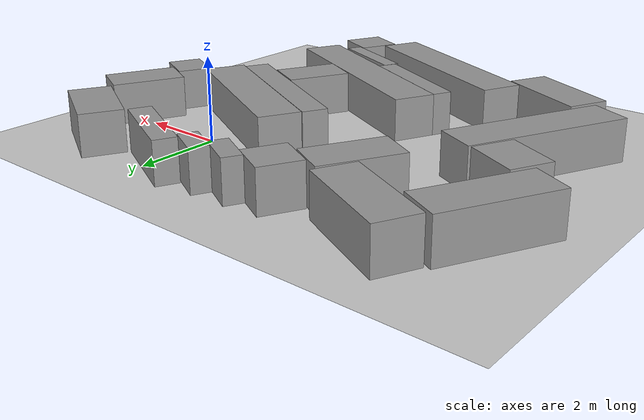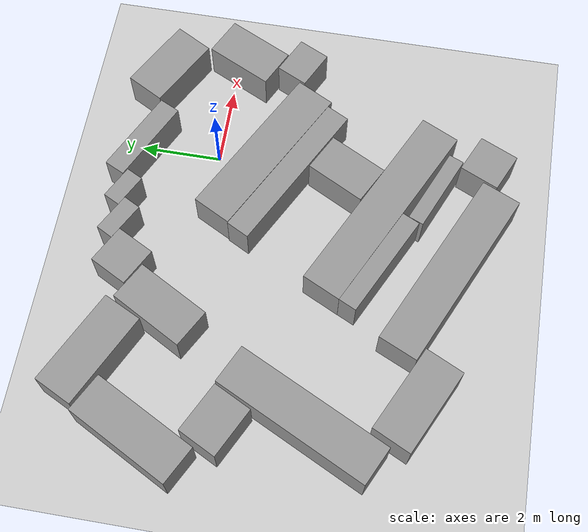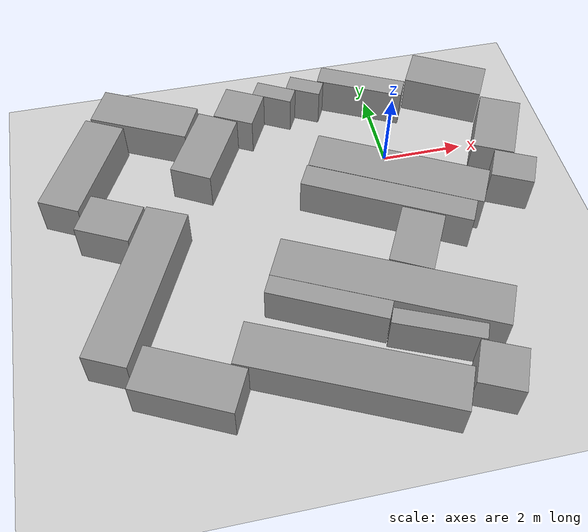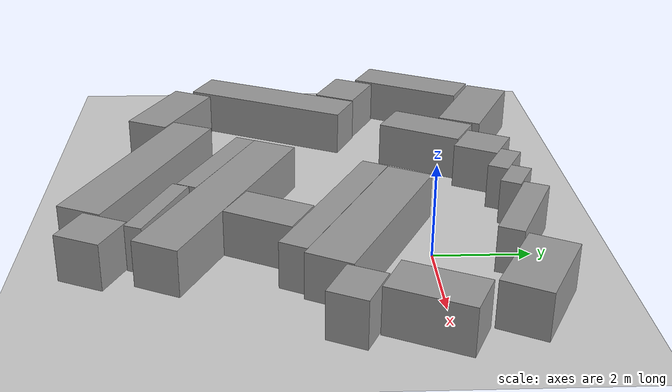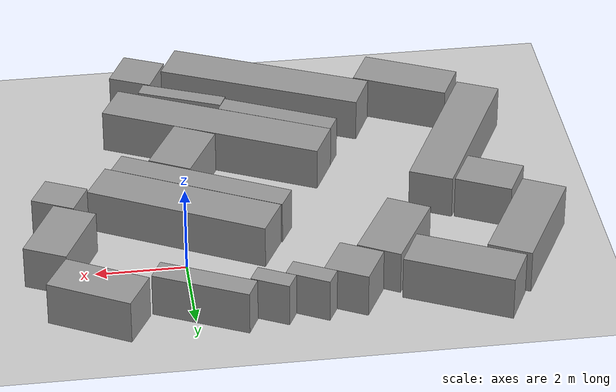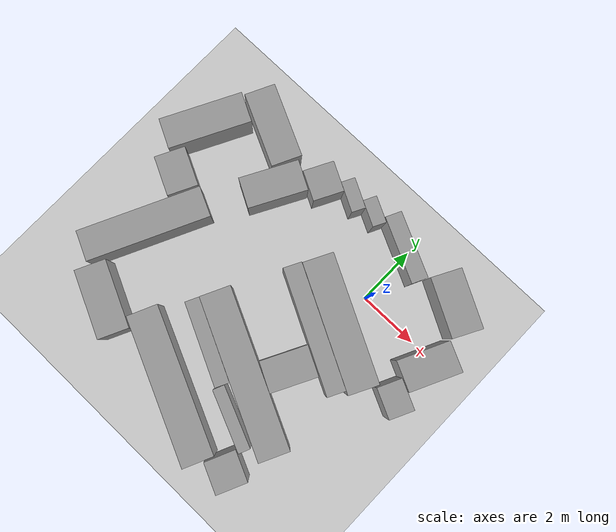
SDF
<sdf version="1.6">
 <world name="default">
  <model name="ground_plane">
   <static>1</static>
   <link name="link">
    <collision name="collision">
     <geometry><plane><normal>0 0 1</normal><size>100 100</size></plane></geometry>
     <surface>
      <contact><collide_bitmask>65535</collide_bitmask></contact>
      <friction><ode><mu>100</mu><mu2>50</mu2></ode></friction>
     </surface>
    </collision>
    <visual name="visual">
     <cast_shadows>0</cast_shadows>
     <geometry><plane><normal>0 0 1</normal><size>100 100</size></plane></geometry>
     <material>
      <script><uri>file://media/materials/scripts/gazebo.material</uri><name>Gazebo/Grey</name></script>
     </material>
    </visual>
   </link>
  </model>
  <light name="sun" type="directional">
   <pose>0 0 10 0 -0 0</pose>
   <diffuse>0.8 0.8 0.8 1</diffuse>
   <specular>0.2 0.2 0.2 1</specular>
   <attenuation>
    <range>1000</range>
    <constant>0.9</constant>
    <linear>0.01</linear>
    <quadratic>0.001</quadratic>
   </attenuation>
   <direction>-0.5 0.1 -0.9</direction>
  </light>
  <gravity>0 0 -9.8</gravity>
  <magnetic_field>6e-06 2.3e-05 -4.2e-05</magnetic_field>
  <atmosphere type="adiabatic"/>
  <physics name="default_physics" default="0" type="ode">
   <max_step_size>0.001</max_step_size>
   <real_time_factor>1</real_time_factor>
   <real_time_update_rate>1000</real_time_update_rate>
  </physics>
  <scene><ambient>0.4 0.4 0.4 1</ambient><background>0.7 0.7 0.7 1</background><shadows>1</shadows></scene>
  <audio><device>default</device></audio>
  <spherical_coordinates>
   <surface_model>EARTH_WGS84</surface_model>
   <latitude_deg>0</latitude_deg>
   <longitude_deg>0</longitude_deg>
   <elevation>0</elevation>
   <heading_deg>0</heading_deg>
  </spherical_coordinates>
  <model name="unit_box">
   <pose>-0.08106 -1.20673 0.499992 -2e-06 4e-06 -0.481204</pose>
   <link name="link">
    <inertial>
     <mass>1</mass>
     <inertia>
      <ixx>0.166667</ixx>
      <ixy>0</ixy>
      <ixz>0</ixz>
      <iyy>0.166667</iyy>
      <iyz>0</iyz>
      <izz>0.166667</izz>
     </inertia>
    </inertial>
    <collision name="collision"><geometry><box><size>4.18394 1 1</size></box></geometry></collision>
    <visual name="visual">
     <geometry><box><size>4.18394 1 1</size></box></geometry>
     <material>
      <script><name>Gazebo/Grey</name><uri>file://media/materials/scripts/gazebo.material</uri></script>
     </material>
    </visual>
   </link>
  </model>
  <light name="user_point_light_0" type="point">
   <pose>-0.109978 0.021372 1 0 -0 0</pose>
   <diffuse>0.5 0.5 0.5 1</diffuse>
   <specular>0.1 0.1 0.1 1</specular>
   <attenuation>
    <range>20</range>
    <constant>0.5</constant>
    <linear>0.01</linear>
    <quadratic>0.001</quadratic>
   </attenuation>
   <cast_shadows>0</cast_shadows>
   <direction>0 0 -1</direction>
  </light>
  <model name="unit_box_0">
   <pose>2.61788 -1.71367 0.500001 -2e-06 -0 -0.45105</pose>
   <link name="link">
    <inertial>
     <mass>1</mass>
     <inertia>
      <ixx>0.166667</ixx>
      <ixy>0</ixy>
      <ixz>0</ixz>
      <iyy>0.166667</iyy>
      <iyz>0</iyz>
      <izz>0.166667</izz>
     </inertia>
    </inertial>
    <collision name="collision"><geometry><box><size>1 0.813765 1</size></box></geometry></collision>
    <visual name="visual">
     <geometry><box><size>1 0.813765 1</size></box></geometry>
     <material>
      <script><name>Gazebo/Grey</name><uri>file://media/materials/scripts/gazebo.material</uri></script>
     </material>
    </visual>
   </link>
  </model>
  <model name="unit_box_1">
   <pose>2.70088 -0.314626 0.499995 0 -1e-05 -0.451475</pose>
   <link name="link">
    <inertial>
     <mass>1</mass>
     <inertia>
      <ixx>0.166667</ixx>
      <ixy>0</ixy>
      <ixz>0</ixz>
      <iyy>0.166667</iyy>
      <iyz>0</iyz>
      <izz>0.166667</izz>
     </inertia>
    </inertial>
    <collision name="collision"><geometry><box><size>1 1.72222 1</size></box></geometry></collision>
    <visual name="visual">
     <geometry><box><size>1 1.72222 1</size></box></geometry>
     <material>
      <script><name>Gazebo/Grey</name><uri>file://media/materials/scripts/gazebo.material</uri></script>
     </material>
    </visual>
   </link>
  </model>
  <model name="unit_box_2">
   <pose>2.02484 1.64608 0.5 0 0 -0.496639</pose>
   <link name="link">
    <inertial>
     <mass>1</mass>
     <inertia>
      <ixx>0.166667</ixx>
      <ixy>0</ixy>
      <ixz>0</ixz>
      <iyy>0.166667</iyy>
      <iyz>0</iyz>
      <izz>0.166667</izz>
     </inertia>
    </inertial>
    <collision name="collision"><geometry><box><size>1.93161 1 1</size></box></geometry></collision>
    <visual name="visual">
     <geometry><box><size>1.93161 1 1</size></box></geometry>
     <material>
      <script><name>Gazebo/Grey</name><uri>file://media/materials/scripts/gazebo.material</uri></script>
     </material>
    </visual>
   </link>
  </model>
  <model name="unit_box_3">
   <pose>-0.208437 1.84811 0.5 -0 -0 -0.449603</pose>
   <link name="link">
    <inertial>
     <mass>1</mass>
     <inertia>
      <ixx>0.166667</ixx>
      <ixy>0</ixy>
      <ixz>0</ixz>
      <iyy>0.166667</iyy>
      <iyz>0</iyz>
      <izz>0.166667</izz>
     </inertia>
    </inertial>
    <collision name="collision"><geometry><box><size>2.1854 0.532691 1</size></box></geometry></collision>
    <visual name="visual">
     <geometry><box><size>2.1854 0.532691 1</size></box></geometry>
     <material>
      <script><name>Gazebo/Grey</name><uri>file://media/materials/scripts/gazebo.material</uri></script>
     </material>
    </visual>
   </link>
  </model>
  <model name="unit_box_4">
   <pose>-1.65856 1.99206 0.5 -0 -0 -0.471515</pose>
   <link name="link">
    <inertial>
     <mass>1</mass>
     <inertia>
      <ixx>0.166667</ixx>
      <ixy>0</ixy>
      <ixz>0</ixz>
      <iyy>0.166667</iyy>
      <iyz>0</iyz>
      <izz>0.166667</izz>
     </inertia>
    </inertial>
    <collision name="collision"><geometry><box><size>0.872593 0.441047 1</size></box></geometry></collision>
    <visual name="visual">
     <geometry><box><size>0.872593 0.441047 1</size></box></geometry>
     <material>
      <script><name>Gazebo/Grey</name><uri>file://media/materials/scripts/gazebo.material</uri></script>
     </material>
    </visual>
   </link>
  </model>
  <model name="unit_box_5">
   <pose>-2.47867 1.91462 0.5 -0 -0 -0.486707</pose>
   <link name="link">
    <inertial>
     <mass>1</mass>
     <inertia>
      <ixx>0.166667</ixx>
      <ixy>0</ixy>
      <ixz>0</ixz>
      <iyy>0.166667</iyy>
      <iyz>0</iyz>
      <izz>0.166667</izz>
     </inertia>
    </inertial>
    <collision name="collision"><geometry><box><size>1 0.449802 1</size></box></geometry></collision>
    <visual name="visual">
     <geometry><box><size>1 0.449802 1</size></box></geometry>
     <material>
      <script><name>Gazebo/Grey</name><uri>file://media/materials/scripts/gazebo.material</uri></script>
     </material>
    </visual>
   </link>
  </model>
  <model name="unit_box_6">
   <pose>-3.43939 1.60097 0.5 0 0 -0.483369</pose>
   <link name="link">
    <inertial>
     <mass>1</mass>
     <inertia>
      <ixx>0.166667</ixx>
      <ixy>0</ixy>
      <ixz>0</ixz>
      <iyy>0.166667</iyy>
      <iyz>0</iyz>
      <izz>0.166667</izz>
     </inertia>
    </inertial>
    <collision name="collision"><geometry><box><size>1 1 1</size></box></geometry></collision>
    <visual name="visual">
     <geometry><box><size>1 1 1</size></box></geometry>
     <material>
      <script><name>Gazebo/Grey</name><uri>file://media/materials/scripts/gazebo.material</uri></script>
     </material>
    </visual>
   </link>
  </model>
  <model name="unit_box_7">
   <pose>-0.529742 -1.88184 0.499991 -1e-06 4e-06 -0.479867</pose>
   <link name="link">
    <inertial>
     <mass>1</mass>
     <inertia>
      <ixx>0.166667</ixx>
      <ixy>0</ixy>
      <ixz>0</ixz>
      <iyy>0.166667</iyy>
      <iyz>0</iyz>
      <izz>0.166667</izz>
     </inertia>
    </inertial>
    <collision name="collision"><geometry><box><size>4.06101 0.602779 1</size></box></geometry></collision>
    <visual name="visual">
     <geometry><box><size>4.06101 0.602779 1</size></box></geometry>
     <material>
      <script><name>Gazebo/Grey</name><uri>file://media/materials/scripts/gazebo.material</uri></script>
     </material>
    </visual>
   </link>
  </model>
  <model name="unit_box_8">
   <pose>-0.251177 -3.26548 0.499998 -0 4e-06 -0.479902</pose>
   <link name="link">
    <inertial>
     <mass>1</mass>
     <inertia>
      <ixx>0.166667</ixx>
      <ixy>0</ixy>
      <ixz>0</ixz>
      <iyy>0.166667</iyy>
      <iyz>0</iyz>
      <izz>0.166667</izz>
     </inertia>
    </inertial>
    <collision name="collision"><geometry><box><size>1 1.53321 1</size></box></geometry></collision>
    <visual name="visual">
     <geometry><box><size>1 1.53321 1</size></box></geometry>
     <material>
      <script><name>Gazebo/Grey</name><uri>file://media/materials/scripts/gazebo.material</uri></script>
     </material>
    </visual>
   </link>
  </model>
  <model name="unit_box_9">
   <pose>-1.12916 -4.26326 0.5 -1e-06 -0 -0.45107</pose>
   <link name="link">
    <inertial>
     <mass>1</mass>
     <inertia>
      <ixx>0.166667</ixx>
      <ixy>0</ixy>
      <ixz>0</ixz>
      <iyy>0.166667</iyy>
      <iyz>0</iyz>
      <izz>0.166667</izz>
     </inertia>
    </inertial>
    <collision name="collision"><geometry><box><size>5.18656 1 1</size></box></geometry></collision>
    <visual name="visual">
     <geometry><box><size>5.18656 1 1</size></box></geometry>
     <material>
      <script><name>Gazebo/Grey</name><uri>file://media/materials/scripts/gazebo.material</uri></script>
     </material>
    </visual>
   </link>
  </model>
  <model name="unit_box_10">
   <pose>-2.55935 -4.38392 0.5 -1e-06 0 -0.451833</pose>
   <link name="link">
    <inertial>
     <mass>1</mass>
     <inertia>
      <ixx>0.166667</ixx>
      <ixy>0</ixy>
      <ixz>0</ixz>
      <iyy>0.166667</iyy>
      <iyz>0</iyz>
      <izz>0.166667</izz>
     </inertia>
    </inertial>
    <collision name="collision"><geometry><box><size>2.71054 0.462001 1</size></box></geometry></collision>
    <visual name="visual">
     <geometry><box><size>2.71054 0.462001 1</size></box></geometry>
     <material>
      <script><name>Gazebo/Grey</name><uri>file://media/materials/scripts/gazebo.material</uri></script>
     </material>
    </visual>
   </link>
  </model>
  <model name="unit_box_11">
   <pose>-0.461202 -5.48454 0.499989 0 -1.1e-05 -0.40355</pose>
   <link name="link">
    <inertial>
     <mass>1</mass>
     <inertia>
      <ixx>0.166667</ixx>
      <ixy>0</ixy>
      <ixz>0</ixz>
      <iyy>0.166667</iyy>
      <iyz>0</iyz>
      <izz>0.166667</izz>
     </inertia>
    </inertial>
    <collision name="collision"><geometry><box><size>1.99706 0.379816 1</size></box></geometry></collision>
    <visual name="visual">
     <geometry><box><size>1.99706 0.379816 1</size></box></geometry>
     <material>
      <script><name>Gazebo/Grey</name><uri>file://media/materials/scripts/gazebo.material</uri></script>
     </material>
    </visual>
   </link>
  </model>
  <model name="unit_box_12">
   <pose>0.479654 -6.67579 0.499995 -1e-05 -0 -0.42919</pose>
   <link name="link">
    <inertial>
     <mass>1</mass>
     <inertia>
      <ixx>0.166667</ixx>
      <ixy>0</ixy>
      <ixz>0</ixz>
      <iyy>0.166667</iyy>
      <iyz>0</iyz>
      <izz>0.166667</izz>
     </inertia>
    </inertial>
    <collision name="collision"><geometry><box><size>1 1 1</size></box></geometry></collision>
    <visual name="visual">
     <geometry><box><size>1 1 1</size></box></geometry>
     <material>
      <script><name>Gazebo/Grey</name><uri>file://media/materials/scripts/gazebo.material</uri></script>
     </material>
    </visual>
   </link>
  </model>
  <model name="unit_box_13">
   <pose>-2.46125 -6.05208 0.499991 1e-06 -3e-06 -0.427274</pose>
   <link name="link">
    <inertial>
     <mass>1</mass>
     <inertia>
      <ixx>0.166667</ixx>
      <ixy>0</ixy>
      <ixz>0</ixz>
      <iyy>0.166667</iyy>
      <iyz>0</iyz>
      <izz>0.166667</izz>
     </inertia>
    </inertial>
    <collision name="collision"><geometry><box><size>4.76978 1 1</size></box></geometry></collision>
    <visual name="visual">
     <geometry><box><size>4.76978 1 1</size></box></geometry>
     <material>
      <script><name>Gazebo/Grey</name><uri>file://media/materials/scripts/gazebo.material</uri></script>
     </material>
    </visual>
   </link>
  </model>
  <model name="unit_box_14">
   <pose>-4.48641 0.460091 0.499995 -5e-06 -0 -0.50099</pose>
   <link name="link">
    <inertial>
     <mass>1</mass>
     <inertia>
      <ixx>0.166667</ixx>
      <ixy>0</ixy>
      <ixz>0</ixz>
      <iyy>0.166667</iyy>
      <iyz>0</iyz>
      <izz>0.166667</izz>
     </inertia>
    </inertial>
    <collision name="collision"><geometry><box><size>1 1.9353 1</size></box></geometry></collision>
    <visual name="visual">
     <geometry><box><size>1 1.9353 1</size></box></geometry>
     <material>
      <script><name>Gazebo/Grey</name><uri>file://media/materials/scripts/gazebo.material</uri></script>
     </material>
    </visual>
   </link>
  </model>
  <model name="unit_box_15">
   <pose>-6.48104 -3.1771 0.499996 0 7e-06 -0.448059</pose>
   <link name="link">
    <inertial>
     <mass>1</mass>
     <inertia>
      <ixx>0.166667</ixx>
      <ixy>0</ixy>
      <ixz>0</ixz>
      <iyy>0.166667</iyy>
      <iyz>0</iyz>
      <izz>0.166667</izz>
     </inertia>
    </inertial>
    <collision name="collision"><geometry><box><size>1 3.99612 1</size></box></geometry></collision>
    <visual name="visual">
     <geometry><box><size>1 3.99612 1</size></box></geometry>
     <material>
      <script><name>Gazebo/Grey</name><uri>file://media/materials/scripts/gazebo.material</uri></script>
     </material>
    </visual>
   </link>
  </model>
  <model name="unit_box_16">
   <pose>-5.74165 -5.6689 0.499995 -0 4e-06 -0.446412</pose>
   <link name="link">
    <inertial>
     <mass>1</mass>
     <inertia>
      <ixx>0.166667</ixx>
      <ixy>0</ixy>
      <ixz>0</ixz>
      <iyy>0.166667</iyy>
      <iyz>0</iyz>
      <izz>0.166667</izz>
     </inertia>
    </inertial>
    <collision name="collision"><geometry><box><size>2.22222 1 1</size></box></geometry></collision>
    <visual name="visual">
     <geometry><box><size>2.22222 1 1</size></box></geometry>
     <material>
      <script><name>Gazebo/Grey</name><uri>file://media/materials/scripts/gazebo.material</uri></script>
     </material>
    </visual>
   </link>
  </model>
  <model name="unit_box_17">
   <pose>-5.79935 1.81395 0.5 -0 -0 -0.452544</pose>
   <link name="link">
    <inertial>
     <mass>1</mass>
     <inertia>
      <ixx>0.166667</ixx>
      <ixy>0</ixy>
      <ixz>0</ixz>
      <iyy>0.166667</iyy>
      <iyz>0</iyz>
      <izz>0.166667</izz>
     </inertia>
    </inertial>
    <collision name="collision"><geometry><box><size>2.4571 1 1</size></box></geometry></collision>
    <visual name="visual">
     <geometry><box><size>2.4571 1 1</size></box></geometry>
     <material>
      <script><name>Gazebo/Grey</name><uri>file://media/materials/scripts/gazebo.material</uri></script>
     </material>
    </visual>
   </link>
  </model>
  <model name="unit_box_18">
   <pose>-7.42636 0.454364 0.499995 -4e-06 -0 -0.477882</pose>
   <link name="link">
    <inertial>
     <mass>1</mass>
     <inertia>
      <ixx>0.166667</ixx>
      <ixy>0</ixy>
      <ixz>0</ixz>
      <iyy>0.166667</iyy>
      <iyz>0</iyz>
      <izz>0.166667</izz>
     </inertia>
    </inertial>
    <collision name="collision"><geometry><box><size>1 2.71304 1</size></box></geometry></collision>
    <visual name="visual">
     <geometry><box><size>1 2.71304 1</size></box></geometry>
     <material>
      <script><name>Gazebo/Grey</name><uri>file://media/materials/scripts/gazebo.material</uri></script>
     </material>
    </visual>
   </link>
  </model>
  <model name="unit_box_19">
   <pose>-6.92795 -1.32143 0.5 0 0 -0.463384</pose>
   <link name="link">
    <inertial>
     <mass>1</mass>
     <inertia>
      <ixx>0.166667</ixx>
      <ixy>0</ixy>
      <ixz>0</ixz>
      <iyy>0.166667</iyy>
      <iyz>0</iyz>
      <izz>0.166667</izz>
     </inertia>
    </inertial>
    <collision name="collision"><geometry><box><size>1.29928 1 1</size></box></geometry></collision>
    <visual name="visual">
     <geometry><box><size>1.29928 1 1</size></box></geometry>
     <material>
      <script><name>Gazebo/Grey</name><uri>file://media/materials/scripts/gazebo.material</uri></script>
     </material>
    </visual>
   </link>
  </model>
 </world>
</sdf>
